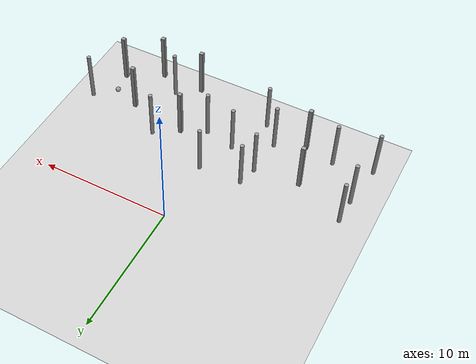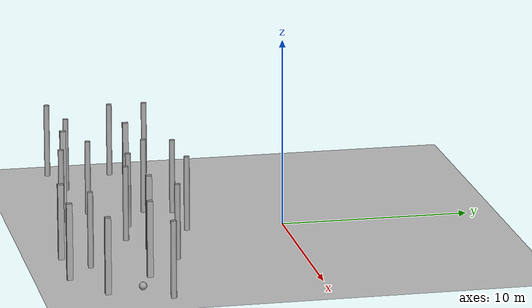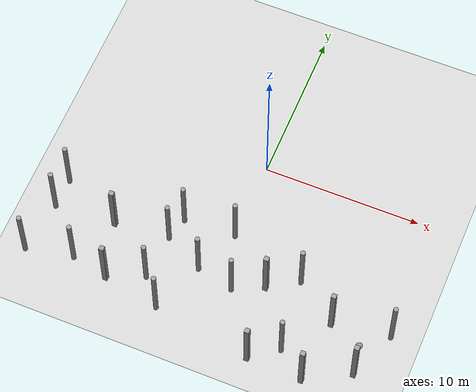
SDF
<sdf version="1.6">
 <world name="default">
  <model name="ground_plane">
   <static>1</static>
   <link name="link">
    <collision name="collision">
     <geometry><plane><normal>0 0 1</normal><size>100 100</size></plane></geometry>
    </collision>
    <visual name="visual">
     <cast_shadows>0</cast_shadows>
     <geometry><plane><normal>0 0 1</normal><size>100 100</size></plane></geometry>
     <material>
      <script><uri>file://media/materials/scripts/gazebo.material</uri><name>Gazebo/Gray</name></script>
     </material>
    </visual>
   </link>
  </model>
  <model name="unit_sphere">
   <link name="link">
    <inertial>
     <mass>1</mass>
     <inertia><ixx>0.1</ixx><ixy>0</ixy><ixz>0</ixz><iyy>0.1</iyy><iyz>0</iyz><izz>0.1</izz></inertia>
    </inertial>
    <gravity>0</gravity>
    <visual name="visual">
     <geometry><sphere><radius>0.203941</radius></sphere></geometry>
     <material>
      <script><name>Gazebo/Grey</name><uri>file://media/materials/scripts/gazebo.material</uri></script>
      <shader type="pixel"><normal_map>__default__</normal_map></shader>
     </material>
    </visual>
    <collision name="collision">
     <geometry><sphere><radius>0.203941</radius></sphere></geometry>
     <surface>
      <friction>
       <ode><mu>1</mu><mu2>1</mu2><fdir1>0 0 0</fdir1><slip1>0</slip1><slip2>0</slip2></ode>
       <torsional>
        <coefficient>1</coefficient>
        <patch_radius>0</patch_radius>
        <surface_radius>0</surface_radius>
        <use_patch_radius>1</use_patch_radius>
        <ode><slip>0</slip></ode>
       </torsional>
      </friction>
      <bounce><restitution_coefficient>0</restitution_coefficient><threshold>1e+06</threshold></bounce>
      <contact>
       <collide_without_contact>0</collide_without_contact>
       <collide_without_contact_bitmask>1</collide_without_contact_bitmask>
       <collide_bitmask>1</collide_bitmask>
       <ode>
        <soft_cfm>0</soft_cfm>
        <soft_erp>0.2</soft_erp>
        <kp>1e+13</kp>
        <kd>1</kd>
        <max_vel>0.01</max_vel>
        <min_depth>0</min_depth>
       </ode>
       <bullet>
        <split_impulse>1</split_impulse>
        <split_impulse_penetration_threshold>-0.01</split_impulse_penetration_threshold>
        <soft_cfm>0</soft_cfm>
        <soft_erp>0.2</soft_erp>
        <kp>1e+13</kp>
        <kd>1</kd>
       </bullet>
      </contact>
     </surface>
    </collision>
   </link>
   <static>0</static>
   <pose>9.54607 -9.14462 0.203941 0 -0 0</pose>
  </model>
  <model name="unit_box_clone_7">
   <link name="link">
    <inertial>
     <mass>1000</mass>
     <inertia><ixx>166.667</ixx><ixy>0</ixy><ixz>0</ixz><iyy>166.667</iyy><iyz>0</iyz><izz>166.667</izz></inertia>
    </inertial>
    <visual name="visual">
     <geometry><box><size>0.3 0.3 4</size></box></geometry>
     <material>
      <script><name>Gazebo/Grey</name><uri>file://media/materials/scripts/gazebo.material</uri></script>
      <shader type="vertex"><normal_map>__default__</normal_map></shader>
      <ambient>0.3 0.3 0.3 1</ambient>
      <diffuse>0.7 0.7 0.7 1</diffuse>
      <specular>0.01 0.01 0.01 1</specular>
      <emissive>0 0 0 1</emissive>
     </material>
    </visual>
    <collision name="collision">
     <geometry><box><size>0.3 0.3 4</size></box></geometry>
     <surface>
      <friction>
       <ode><mu>1</mu><mu2>1</mu2><fdir1>0 0 0</fdir1><slip1>0</slip1><slip2>0</slip2></ode>
       <torsional>
        <coefficient>1</coefficient>
        <patch_radius>0</patch_radius>
        <surface_radius>0</surface_radius>
        <use_patch_radius>1</use_patch_radius>
        <ode><slip>0</slip></ode>
       </torsional>
      </friction>
      <bounce><restitution_coefficient>0</restitution_coefficient><threshold>1e+06</threshold></bounce>
      <contact>
       <collide_without_contact>0</collide_without_contact>
       <collide_without_contact_bitmask>1</collide_without_contact_bitmask>
       <collide_bitmask>1</collide_bitmask>
       <ode>
        <soft_cfm>0</soft_cfm>
        <soft_erp>0.2</soft_erp>
        <kp>1e+13</kp>
        <kd>1</kd>
        <max_vel>0.01</max_vel>
        <min_depth>0</min_depth>
       </ode>
       <bullet>
        <split_impulse>1</split_impulse>
        <split_impulse_penetration_threshold>-0.01</split_impulse_penetration_threshold>
        <soft_cfm>0</soft_cfm>
        <soft_erp>0.2</soft_erp>
        <kp>1e+13</kp>
        <kd>1</kd>
       </bullet>
      </contact>
     </surface>
    </collision>
   </link>
   <static>0</static>
   <pose>9.86051 -10.9629 2 -2e-06 -2.1e-05 -0.007326</pose>
  </model>
  <model name="unit_cylinder_clone_1_clone">
   <link name="link">
    <inertial>
     <mass>1000</mass>
     <inertia><ixx>145.833</ixx><ixy>0</ixy><ixz>0</ixz><iyy>145.833</iyy><iyz>0</iyz><izz>125</izz></inertia>
    </inertial>
    <visual name="visual">
     <geometry><cylinder><radius>0.15</radius><length>4</length></cylinder></geometry>
     <material>
      <script><name>Gazebo/Grey</name><uri>file://media/materials/scripts/gazebo.material</uri></script>
      <shader type="vertex"><normal_map>__default__</normal_map></shader>
      <ambient>0.3 0.3 0.3 1</ambient>
      <diffuse>0.7 0.7 0.7 1</diffuse>
      <specular>0.01 0.01 0.01 1</specular>
      <emissive>0 0 0 1</emissive>
     </material>
    </visual>
    <collision name="collision">
     <geometry><cylinder><radius>0.15</radius><length>4</length></cylinder></geometry>
     <surface>
      <friction>
       <ode><mu>1</mu><mu2>1</mu2><fdir1>0 0 0</fdir1><slip1>0</slip1><slip2>0</slip2></ode>
       <torsional>
        <coefficient>1</coefficient>
        <patch_radius>0</patch_radius>
        <surface_radius>0</surface_radius>
        <use_patch_radius>1</use_patch_radius>
        <ode><slip>0</slip></ode>
       </torsional>
      </friction>
      <bounce><restitution_coefficient>0</restitution_coefficient><threshold>1e+06</threshold></bounce>
      <contact>
       <collide_without_contact>0</collide_without_contact>
       <collide_without_contact_bitmask>1</collide_without_contact_bitmask>
       <collide_bitmask>1</collide_bitmask>
       <ode>
        <soft_cfm>0</soft_cfm>
        <soft_erp>0.2</soft_erp>
        <kp>1e+13</kp>
        <kd>1</kd>
        <max_vel>0.01</max_vel>
        <min_depth>0</min_depth>
       </ode>
       <bullet>
        <split_impulse>1</split_impulse>
        <split_impulse_penetration_threshold>-0.01</split_impulse_penetration_threshold>
        <soft_cfm>0</soft_cfm>
        <soft_erp>0.2</soft_erp>
        <kp>1e+13</kp>
        <kd>1</kd>
       </bullet>
      </contact>
     </surface>
    </collision>
   </link>
   <static>0</static>
   <pose>-1.25665 -8.01574 1.99995 -0.000271 -2.6e-05 -0.889031</pose>
  </model>
  <model name="unit_cylinder_clone_1_clone_2">
   <link name="link">
    <inertial>
     <mass>1000</mass>
     <inertia><ixx>145.833</ixx><ixy>0</ixy><ixz>0</ixz><iyy>145.833</iyy><iyz>0</iyz><izz>125</izz></inertia>
    </inertial>
    <visual name="visual">
     <geometry><cylinder><radius>0.15</radius><length>4</length></cylinder></geometry>
     <material>
      <script><name>Gazebo/Grey</name><uri>file://media/materials/scripts/gazebo.material</uri></script>
      <shader type="vertex"><normal_map>__default__</normal_map></shader>
      <ambient>0.3 0.3 0.3 1</ambient>
      <diffuse>0.7 0.7 0.7 1</diffuse>
      <specular>0.01 0.01 0.01 1</specular>
      <emissive>0 0 0 1</emissive>
     </material>
    </visual>
    <collision name="collision">
     <geometry><cylinder><radius>0.15</radius><length>4</length></cylinder></geometry>
     <surface>
      <friction>
       <ode><mu>1</mu><mu2>1</mu2><fdir1>0 0 0</fdir1><slip1>0</slip1><slip2>0</slip2></ode>
       <torsional>
        <coefficient>1</coefficient>
        <patch_radius>0</patch_radius>
        <surface_radius>0</surface_radius>
        <use_patch_radius>1</use_patch_radius>
        <ode><slip>0</slip></ode>
       </torsional>
      </friction>
      <bounce><restitution_coefficient>0</restitution_coefficient><threshold>1e+06</threshold></bounce>
      <contact>
       <collide_without_contact>0</collide_without_contact>
       <collide_without_contact_bitmask>1</collide_without_contact_bitmask>
       <collide_bitmask>1</collide_bitmask>
       <ode>
        <soft_cfm>0</soft_cfm>
        <soft_erp>0.2</soft_erp>
        <kp>1e+13</kp>
        <kd>1</kd>
        <max_vel>0.01</max_vel>
        <min_depth>0</min_depth>
       </ode>
       <bullet>
        <split_impulse>1</split_impulse>
        <split_impulse_penetration_threshold>-0.01</split_impulse_penetration_threshold>
        <soft_cfm>0</soft_cfm>
        <soft_erp>0.2</soft_erp>
        <kp>1e+13</kp>
        <kd>1</kd>
       </bullet>
      </contact>
     </surface>
    </collision>
   </link>
   <static>0</static>
   <pose>-3.73047 -6.76346 1.99995 -0.000271 -2.6e-05 -0.89068</pose>
  </model>
  <model name="unit_cylinder_clone_1_clone_6">
   <link name="link">
    <inertial>
     <mass>1000</mass>
     <inertia><ixx>145.833</ixx><ixy>0</ixy><ixz>0</ixz><iyy>145.833</iyy><iyz>0</iyz><izz>125</izz></inertia>
    </inertial>
    <visual name="visual">
     <geometry><cylinder><radius>0.15</radius><length>4</length></cylinder></geometry>
     <material>
      <script><name>Gazebo/Grey</name><uri>file://media/materials/scripts/gazebo.material</uri></script>
      <shader type="vertex"><normal_map>__default__</normal_map></shader>
      <ambient>0.3 0.3 0.3 1</ambient>
      <diffuse>0.7 0.7 0.7 1</diffuse>
      <specular>0.01 0.01 0.01 1</specular>
      <emissive>0 0 0 1</emissive>
     </material>
    </visual>
    <collision name="collision">
     <geometry><cylinder><radius>0.15</radius><length>4</length></cylinder></geometry>
     <surface>
      <friction>
       <ode><mu>1</mu><mu2>1</mu2><fdir1>0 0 0</fdir1><slip1>0</slip1><slip2>0</slip2></ode>
       <torsional>
        <coefficient>1</coefficient>
        <patch_radius>0</patch_radius>
        <surface_radius>0</surface_radius>
        <use_patch_radius>1</use_patch_radius>
        <ode><slip>0</slip></ode>
       </torsional>
      </friction>
      <bounce><restitution_coefficient>0</restitution_coefficient><threshold>1e+06</threshold></bounce>
      <contact>
       <collide_without_contact>0</collide_without_contact>
       <collide_without_contact_bitmask>1</collide_without_contact_bitmask>
       <collide_bitmask>1</collide_bitmask>
       <ode>
        <soft_cfm>0</soft_cfm>
        <soft_erp>0.2</soft_erp>
        <kp>1e+13</kp>
        <kd>1</kd>
        <max_vel>0.01</max_vel>
        <min_depth>0</min_depth>
       </ode>
       <bullet>
        <split_impulse>1</split_impulse>
        <split_impulse_penetration_threshold>-0.01</split_impulse_penetration_threshold>
        <soft_cfm>0</soft_cfm>
        <soft_erp>0.2</soft_erp>
        <kp>1e+13</kp>
        <kd>1</kd>
       </bullet>
      </contact>
     </surface>
    </collision>
   </link>
   <static>0</static>
   <pose>-3.34469 -5.28289 1.99998 -1e-06 1e-06 -0.209365</pose>
  </model>
  <model name="unit_cylinder_clone_1_clone_9">
   <link name="link">
    <inertial>
     <mass>1000</mass>
     <inertia><ixx>145.833</ixx><ixy>0</ixy><ixz>0</ixz><iyy>145.833</iyy><iyz>0</iyz><izz>125</izz></inertia>
    </inertial>
    <visual name="visual">
     <geometry><cylinder><radius>0.15</radius><length>4</length></cylinder></geometry>
     <material>
      <script><name>Gazebo/Grey</name><uri>file://media/materials/scripts/gazebo.material</uri></script>
      <shader type="vertex"><normal_map>__default__</normal_map></shader>
      <ambient>0.3 0.3 0.3 1</ambient>
      <diffuse>0.7 0.7 0.7 1</diffuse>
      <specular>0.01 0.01 0.01 1</specular>
      <emissive>0 0 0 1</emissive>
     </material>
    </visual>
    <collision name="collision">
     <geometry><cylinder><radius>0.15</radius><length>4</length></cylinder></geometry>
     <surface>
      <friction>
       <ode><mu>1</mu><mu2>1</mu2><fdir1>0 0 0</fdir1><slip1>0</slip1><slip2>0</slip2></ode>
       <torsional>
        <coefficient>1</coefficient>
        <patch_radius>0</patch_radius>
        <surface_radius>0</surface_radius>
        <use_patch_radius>1</use_patch_radius>
        <ode><slip>0</slip></ode>
       </torsional>
      </friction>
      <bounce><restitution_coefficient>0</restitution_coefficient><threshold>1e+06</threshold></bounce>
      <contact>
       <collide_without_contact>0</collide_without_contact>
       <collide_without_contact_bitmask>1</collide_without_contact_bitmask>
       <collide_bitmask>1</collide_bitmask>
       <ode>
        <soft_cfm>0</soft_cfm>
        <soft_erp>0.2</soft_erp>
        <kp>1e+13</kp>
        <kd>1</kd>
        <max_vel>0.01</max_vel>
        <min_depth>0</min_depth>
       </ode>
       <bullet>
        <split_impulse>1</split_impulse>
        <split_impulse_penetration_threshold>-0.01</split_impulse_penetration_threshold>
        <soft_cfm>0</soft_cfm>
        <soft_erp>0.2</soft_erp>
        <kp>1e+13</kp>
        <kd>1</kd>
       </bullet>
      </contact>
     </surface>
    </collision>
   </link>
   <static>0</static>
   <pose>11.0861 -7.86396 1.99995 -0.000271 -2.7e-05 -0.891231</pose>
  </model>
  <model name="unit_cylinder_clone_1_clone_10">
   <link name="link">
    <inertial>
     <mass>1000</mass>
     <inertia><ixx>145.833</ixx><ixy>0</ixy><ixz>0</ixz><iyy>145.833</iyy><iyz>0</iyz><izz>125</izz></inertia>
    </inertial>
    <visual name="visual">
     <geometry><cylinder><radius>0.15</radius><length>4</length></cylinder></geometry>
     <material>
      <script><name>Gazebo/Grey</name><uri>file://media/materials/scripts/gazebo.material</uri></script>
      <shader type="vertex"><normal_map>__default__</normal_map></shader>
      <ambient>0.3 0.3 0.3 1</ambient>
      <diffuse>0.7 0.7 0.7 1</diffuse>
      <specular>0.01 0.01 0.01 1</specular>
      <emissive>0 0 0 1</emissive>
     </material>
    </visual>
    <collision name="collision">
     <geometry><cylinder><radius>0.15</radius><length>4</length></cylinder></geometry>
     <surface>
      <friction>
       <ode><mu>1</mu><mu2>1</mu2><fdir1>0 0 0</fdir1><slip1>0</slip1><slip2>0</slip2></ode>
       <torsional>
        <coefficient>1</coefficient>
        <patch_radius>0</patch_radius>
        <surface_radius>0</surface_radius>
        <use_patch_radius>1</use_patch_radius>
        <ode><slip>0</slip></ode>
       </torsional>
      </friction>
      <bounce><restitution_coefficient>0</restitution_coefficient><threshold>1e+06</threshold></bounce>
      <contact>
       <collide_without_contact>0</collide_without_contact>
       <collide_without_contact_bitmask>1</collide_without_contact_bitmask>
       <collide_bitmask>1</collide_bitmask>
       <ode>
        <soft_cfm>0</soft_cfm>
        <soft_erp>0.2</soft_erp>
        <kp>1e+13</kp>
        <kd>1</kd>
        <max_vel>0.01</max_vel>
        <min_depth>0</min_depth>
       </ode>
       <bullet>
        <split_impulse>1</split_impulse>
        <split_impulse_penetration_threshold>-0.01</split_impulse_penetration_threshold>
        <soft_cfm>0</soft_cfm>
        <soft_erp>0.2</soft_erp>
        <kp>1e+13</kp>
        <kd>1</kd>
       </bullet>
      </contact>
     </surface>
    </collision>
   </link>
   <static>0</static>
   <pose>-0.051758 -5.11049 1.99998 -1e-06 1e-06 -0.191849</pose>
  </model>
  <model name="unit_cylinder_clone_1_clone_15">
   <link name="link">
    <inertial>
     <mass>1000</mass>
     <inertia><ixx>145.833</ixx><ixy>0</ixy><ixz>0</ixz><iyy>145.833</iyy><iyz>0</iyz><izz>125</izz></inertia>
    </inertial>
    <visual name="visual">
     <geometry><cylinder><radius>0.15</radius><length>4</length></cylinder></geometry>
     <material>
      <script><name>Gazebo/Grey</name><uri>file://media/materials/scripts/gazebo.material</uri></script>
      <shader type="vertex"><normal_map>__default__</normal_map></shader>
      <ambient>0.3 0.3 0.3 1</ambient>
      <diffuse>0.7 0.7 0.7 1</diffuse>
      <specular>0.01 0.01 0.01 1</specular>
      <emissive>0 0 0 1</emissive>
     </material>
    </visual>
    <collision name="collision">
     <geometry><cylinder><radius>0.15</radius><length>4</length></cylinder></geometry>
     <surface>
      <friction>
       <ode><mu>1</mu><mu2>1</mu2><fdir1>0 0 0</fdir1><slip1>0</slip1><slip2>0</slip2></ode>
       <torsional>
        <coefficient>1</coefficient>
        <patch_radius>0</patch_radius>
        <surface_radius>0</surface_radius>
        <use_patch_radius>1</use_patch_radius>
        <ode><slip>0</slip></ode>
       </torsional>
      </friction>
      <bounce><restitution_coefficient>0</restitution_coefficient><threshold>1e+06</threshold></bounce>
      <contact>
       <collide_without_contact>0</collide_without_contact>
       <collide_without_contact_bitmask>1</collide_without_contact_bitmask>
       <collide_bitmask>1</collide_bitmask>
       <ode>
        <soft_cfm>0</soft_cfm>
        <soft_erp>0.2</soft_erp>
        <kp>1e+13</kp>
        <kd>1</kd>
        <max_vel>0.01</max_vel>
        <min_depth>0</min_depth>
       </ode>
       <bullet>
        <split_impulse>1</split_impulse>
        <split_impulse_penetration_threshold>-0.01</split_impulse_penetration_threshold>
        <soft_cfm>0</soft_cfm>
        <soft_erp>0.2</soft_erp>
        <kp>1e+13</kp>
        <kd>1</kd>
       </bullet>
      </contact>
     </surface>
    </collision>
   </link>
   <static>0</static>
   <pose>-11.0966 -7.37215 1.99995 -0.000271 -2.7e-05 -0.892503</pose>
  </model>
  <model name="unit_cylinder_clone_1_clone_18">
   <link name="link">
    <inertial>
     <mass>1000</mass>
     <inertia><ixx>145.833</ixx><ixy>0</ixy><ixz>0</ixz><iyy>145.833</iyy><iyz>0</iyz><izz>125</izz></inertia>
    </inertial>
    <visual name="visual">
     <geometry><cylinder><radius>0.15</radius><length>4</length></cylinder></geometry>
     <material>
      <script><name>Gazebo/Grey</name><uri>file://media/materials/scripts/gazebo.material</uri></script>
      <shader type="vertex"><normal_map>__default__</normal_map></shader>
      <ambient>0.3 0.3 0.3 1</ambient>
      <diffuse>0.7 0.7 0.7 1</diffuse>
      <specular>0.01 0.01 0.01 1</specular>
      <emissive>0 0 0 1</emissive>
     </material>
    </visual>
    <collision name="collision">
     <geometry><cylinder><radius>0.15</radius><length>4</length></cylinder></geometry>
     <surface>
      <friction>
       <ode><mu>1</mu><mu2>1</mu2><fdir1>0 0 0</fdir1><slip1>0</slip1><slip2>0</slip2></ode>
       <torsional>
        <coefficient>1</coefficient>
        <patch_radius>0</patch_radius>
        <surface_radius>0</surface_radius>
        <use_patch_radius>1</use_patch_radius>
        <ode><slip>0</slip></ode>
       </torsional>
      </friction>
      <bounce><restitution_coefficient>0</restitution_coefficient><threshold>1e+06</threshold></bounce>
      <contact>
       <collide_without_contact>0</collide_without_contact>
       <collide_without_contact_bitmask>1</collide_without_contact_bitmask>
       <collide_bitmask>1</collide_bitmask>
       <ode>
        <soft_cfm>0</soft_cfm>
        <soft_erp>0.2</soft_erp>
        <kp>1e+13</kp>
        <kd>1</kd>
        <max_vel>0.01</max_vel>
        <min_depth>0</min_depth>
       </ode>
       <bullet>
        <split_impulse>1</split_impulse>
        <split_impulse_penetration_threshold>-0.01</split_impulse_penetration_threshold>
        <soft_cfm>0</soft_cfm>
        <soft_erp>0.2</soft_erp>
        <kp>1e+13</kp>
        <kd>1</kd>
       </bullet>
      </contact>
     </surface>
    </collision>
   </link>
   <static>0</static>
   <pose>-11.5678 -10.755 1.99995 -0.000271 -2.8e-05 -0.896189</pose>
  </model>
  <model name="unit_cylinder_clone_1_clone_19">
   <link name="link">
    <inertial>
     <mass>1000</mass>
     <inertia><ixx>145.833</ixx><ixy>0</ixy><ixz>0</ixz><iyy>145.833</iyy><iyz>0</iyz><izz>125</izz></inertia>
    </inertial>
    <visual name="visual">
     <geometry><cylinder><radius>0.15</radius><length>4</length></cylinder></geometry>
     <material>
      <script><name>Gazebo/Grey</name><uri>file://media/materials/scripts/gazebo.material</uri></script>
      <shader type="vertex"><normal_map>__default__</normal_map></shader>
      <ambient>0.3 0.3 0.3 1</ambient>
      <diffuse>0.7 0.7 0.7 1</diffuse>
      <specular>0.01 0.01 0.01 1</specular>
      <emissive>0 0 0 1</emissive>
     </material>
    </visual>
    <collision name="collision">
     <geometry><cylinder><radius>0.15</radius><length>4</length></cylinder></geometry>
     <surface>
      <friction>
       <ode><mu>1</mu><mu2>1</mu2><fdir1>0 0 0</fdir1><slip1>0</slip1><slip2>0</slip2></ode>
       <torsional>
        <coefficient>1</coefficient>
        <patch_radius>0</patch_radius>
        <surface_radius>0</surface_radius>
        <use_patch_radius>1</use_patch_radius>
        <ode><slip>0</slip></ode>
       </torsional>
      </friction>
      <bounce><restitution_coefficient>0</restitution_coefficient><threshold>1e+06</threshold></bounce>
      <contact>
       <collide_without_contact>0</collide_without_contact>
       <collide_without_contact_bitmask>1</collide_without_contact_bitmask>
       <collide_bitmask>1</collide_bitmask>
       <ode>
        <soft_cfm>0</soft_cfm>
        <soft_erp>0.2</soft_erp>
        <kp>1e+13</kp>
        <kd>1</kd>
        <max_vel>0.01</max_vel>
        <min_depth>0</min_depth>
       </ode>
       <bullet>
        <split_impulse>1</split_impulse>
        <split_impulse_penetration_threshold>-0.01</split_impulse_penetration_threshold>
        <soft_cfm>0</soft_cfm>
        <soft_erp>0.2</soft_erp>
        <kp>1e+13</kp>
        <kd>1</kd>
       </bullet>
      </contact>
     </surface>
    </collision>
   </link>
   <static>0</static>
   <pose>1.10707 -8.55223 1.99995 -0.000271 -2.7e-05 -0.893229</pose>
  </model>
  <model name="unit_cylinder_clone_1_clone_25">
   <link name="link">
    <inertial>
     <mass>1000</mass>
     <inertia><ixx>145.833</ixx><ixy>0</ixy><ixz>0</ixz><iyy>145.833</iyy><iyz>0</iyz><izz>125</izz></inertia>
    </inertial>
    <visual name="visual">
     <geometry><cylinder><radius>0.15</radius><length>4</length></cylinder></geometry>
     <material>
      <script><name>Gazebo/Grey</name><uri>file://media/materials/scripts/gazebo.material</uri></script>
      <shader type="vertex"><normal_map>__default__</normal_map></shader>
      <ambient>0.3 0.3 0.3 1</ambient>
      <diffuse>0.7 0.7 0.7 1</diffuse>
      <specular>0.01 0.01 0.01 1</specular>
      <emissive>0 0 0 1</emissive>
     </material>
    </visual>
    <collision name="collision">
     <geometry><cylinder><radius>0.15</radius><length>4</length></cylinder></geometry>
     <surface>
      <friction>
       <ode><mu>1</mu><mu2>1</mu2><fdir1>0 0 0</fdir1><slip1>0</slip1><slip2>0</slip2></ode>
       <torsional>
        <coefficient>1</coefficient>
        <patch_radius>0</patch_radius>
        <surface_radius>0</surface_radius>
        <use_patch_radius>1</use_patch_radius>
        <ode><slip>0</slip></ode>
       </torsional>
      </friction>
      <bounce><restitution_coefficient>0</restitution_coefficient><threshold>1e+06</threshold></bounce>
      <contact>
       <collide_without_contact>0</collide_without_contact>
       <collide_without_contact_bitmask>1</collide_without_contact_bitmask>
       <collide_bitmask>1</collide_bitmask>
       <ode>
        <soft_cfm>0</soft_cfm>
        <soft_erp>0.2</soft_erp>
        <kp>1e+13</kp>
        <kd>1</kd>
        <max_vel>0.01</max_vel>
        <min_depth>0</min_depth>
       </ode>
       <bullet>
        <split_impulse>1</split_impulse>
        <split_impulse_penetration_threshold>-0.01</split_impulse_penetration_threshold>
        <soft_cfm>0</soft_cfm>
        <soft_erp>0.2</soft_erp>
        <kp>1e+13</kp>
        <kd>1</kd>
       </bullet>
      </contact>
     </surface>
    </collision>
   </link>
   <static>0</static>
   <pose>-11.0462 -5.44264 1.99995 -0.000271 -2.8e-05 -0.897285</pose>
  </model>
  <model name="unit_cylinder_clone_1_clone_26">
   <link name="link">
    <inertial>
     <mass>1000</mass>
     <inertia><ixx>145.833</ixx><ixy>0</ixy><ixz>0</ixz><iyy>145.833</iyy><iyz>0</iyz><izz>125</izz></inertia>
    </inertial>
    <visual name="visual">
     <geometry><cylinder><radius>0.15</radius><length>4</length></cylinder></geometry>
     <material>
      <script><name>Gazebo/Grey</name><uri>file://media/materials/scripts/gazebo.material</uri></script>
      <shader type="vertex"><normal_map>__default__</normal_map></shader>
      <ambient>0.3 0.3 0.3 1</ambient>
      <diffuse>0.7 0.7 0.7 1</diffuse>
      <specular>0.01 0.01 0.01 1</specular>
      <emissive>0 0 0 1</emissive>
     </material>
    </visual>
    <collision name="collision">
     <geometry><cylinder><radius>0.15</radius><length>4</length></cylinder></geometry>
     <surface>
      <friction>
       <ode><mu>1</mu><mu2>1</mu2><fdir1>0 0 0</fdir1><slip1>0</slip1><slip2>0</slip2></ode>
       <torsional>
        <coefficient>1</coefficient>
        <patch_radius>0</patch_radius>
        <surface_radius>0</surface_radius>
        <use_patch_radius>1</use_patch_radius>
        <ode><slip>0</slip></ode>
       </torsional>
      </friction>
      <bounce><restitution_coefficient>0</restitution_coefficient><threshold>1e+06</threshold></bounce>
      <contact>
       <collide_without_contact>0</collide_without_contact>
       <collide_without_contact_bitmask>1</collide_without_contact_bitmask>
       <collide_bitmask>1</collide_bitmask>
       <ode>
        <soft_cfm>0</soft_cfm>
        <soft_erp>0.2</soft_erp>
        <kp>1e+13</kp>
        <kd>1</kd>
        <max_vel>0.01</max_vel>
        <min_depth>0</min_depth>
       </ode>
       <bullet>
        <split_impulse>1</split_impulse>
        <split_impulse_penetration_threshold>-0.01</split_impulse_penetration_threshold>
        <soft_cfm>0</soft_cfm>
        <soft_erp>0.2</soft_erp>
        <kp>1e+13</kp>
        <kd>1</kd>
       </bullet>
      </contact>
     </surface>
    </collision>
   </link>
   <static>0</static>
   <pose>-3.96523 -9.72244 1.99995 -0.000271 -2.8e-05 -0.896437</pose>
  </model>
  <model name="unit_cylinder_clone_1_clone_28">
   <link name="link">
    <inertial>
     <mass>1000</mass>
     <inertia><ixx>145.833</ixx><ixy>0</ixy><ixz>0</ixz><iyy>145.833</iyy><iyz>0</iyz><izz>125</izz></inertia>
    </inertial>
    <visual name="visual">
     <geometry><cylinder><radius>0.15</radius><length>4</length></cylinder></geometry>
     <material>
      <script><name>Gazebo/Grey</name><uri>file://media/materials/scripts/gazebo.material</uri></script>
      <shader type="vertex"><normal_map>__default__</normal_map></shader>
      <ambient>0.3 0.3 0.3 1</ambient>
      <diffuse>0.7 0.7 0.7 1</diffuse>
      <specular>0.01 0.01 0.01 1</specular>
      <emissive>0 0 0 1</emissive>
     </material>
    </visual>
    <collision name="collision">
     <geometry><cylinder><radius>0.15</radius><length>4</length></cylinder></geometry>
     <surface>
      <friction>
       <ode><mu>1</mu><mu2>1</mu2><fdir1>0 0 0</fdir1><slip1>0</slip1><slip2>0</slip2></ode>
       <torsional>
        <coefficient>1</coefficient>
        <patch_radius>0</patch_radius>
        <surface_radius>0</surface_radius>
        <use_patch_radius>1</use_patch_radius>
        <ode><slip>0</slip></ode>
       </torsional>
      </friction>
      <bounce><restitution_coefficient>0</restitution_coefficient><threshold>1e+06</threshold></bounce>
      <contact>
       <collide_without_contact>0</collide_without_contact>
       <collide_without_contact_bitmask>1</collide_without_contact_bitmask>
       <collide_bitmask>1</collide_bitmask>
       <ode>
        <soft_cfm>0</soft_cfm>
        <soft_erp>0.2</soft_erp>
        <kp>1e+13</kp>
        <kd>1</kd>
        <max_vel>0.01</max_vel>
        <min_depth>0</min_depth>
       </ode>
       <bullet>
        <split_impulse>1</split_impulse>
        <split_impulse_penetration_threshold>-0.01</split_impulse_penetration_threshold>
        <soft_cfm>0</soft_cfm>
        <soft_erp>0.2</soft_erp>
        <kp>1e+13</kp>
        <kd>1</kd>
       </bullet>
      </contact>
     </surface>
    </collision>
   </link>
   <static>0</static>
   <pose>-2.60881 -11.3569 1.99995 -0.000271 -2.8e-05 -0.897294</pose>
  </model>
  <model name="unit_cylinder_clone_1_clone_30">
   <link name="link">
    <inertial>
     <mass>1000</mass>
     <inertia><ixx>145.833</ixx><ixy>0</ixy><ixz>0</ixz><iyy>145.833</iyy><iyz>0</iyz><izz>125</izz></inertia>
    </inertial>
    <visual name="visual">
     <geometry><cylinder><radius>0.15</radius><length>4</length></cylinder></geometry>
     <material>
      <script><name>Gazebo/Grey</name><uri>file://media/materials/scripts/gazebo.material</uri></script>
      <shader type="vertex"><normal_map>__default__</normal_map></shader>
      <ambient>0.3 0.3 0.3 1</ambient>
      <diffuse>0.7 0.7 0.7 1</diffuse>
      <specular>0.01 0.01 0.01 1</specular>
      <emissive>0 0 0 1</emissive>
     </material>
    </visual>
    <collision name="collision">
     <geometry><cylinder><radius>0.15</radius><length>4</length></cylinder></geometry>
     <surface>
      <friction>
       <ode><mu>1</mu><mu2>1</mu2><fdir1>0 0 0</fdir1><slip1>0</slip1><slip2>0</slip2></ode>
       <torsional>
        <coefficient>1</coefficient>
        <patch_radius>0</patch_radius>
        <surface_radius>0</surface_radius>
        <use_patch_radius>1</use_patch_radius>
        <ode><slip>0</slip></ode>
       </torsional>
      </friction>
      <bounce><restitution_coefficient>0</restitution_coefficient><threshold>1e+06</threshold></bounce>
      <contact>
       <collide_without_contact>0</collide_without_contact>
       <collide_without_contact_bitmask>1</collide_without_contact_bitmask>
       <collide_bitmask>1</collide_bitmask>
       <ode>
        <soft_cfm>0</soft_cfm>
        <soft_erp>0.2</soft_erp>
        <kp>1e+13</kp>
        <kd>1</kd>
        <max_vel>0.01</max_vel>
        <min_depth>0</min_depth>
       </ode>
       <bullet>
        <split_impulse>1</split_impulse>
        <split_impulse_penetration_threshold>-0.01</split_impulse_penetration_threshold>
        <soft_cfm>0</soft_cfm>
        <soft_erp>0.2</soft_erp>
        <kp>1e+13</kp>
        <kd>1</kd>
       </bullet>
      </contact>
     </surface>
    </collision>
   </link>
   <static>0</static>
   <pose>-8.57241 -10.1768 1.99995 -0.000271 -2.8e-05 -0.89728</pose>
  </model>
  <model name="unit_cylinder_clone_clone">
   <link name="link">
    <inertial>
     <mass>1000</mass>
     <inertia><ixx>145.833</ixx><ixy>0</ixy><ixz>0</ixz><iyy>145.833</iyy><iyz>0</iyz><izz>125</izz></inertia>
    </inertial>
    <visual name="visual">
     <geometry><cylinder><radius>0.15</radius><length>4</length></cylinder></geometry>
     <material>
      <script><name>Gazebo/Grey</name><uri>file://media/materials/scripts/gazebo.material</uri></script>
      <shader type="vertex"><normal_map>__default__</normal_map></shader>
      <ambient>0.3 0.3 0.3 1</ambient>
      <diffuse>0.7 0.7 0.7 1</diffuse>
      <specular>0.01 0.01 0.01 1</specular>
      <emissive>0 0 0 1</emissive>
     </material>
    </visual>
    <collision name="collision">
     <geometry><cylinder><radius>0.15</radius><length>4</length></cylinder></geometry>
     <surface>
      <friction>
       <ode><mu>1</mu><mu2>1</mu2><fdir1>0 0 0</fdir1><slip1>0</slip1><slip2>0</slip2></ode>
       <torsional>
        <coefficient>1</coefficient>
        <patch_radius>0</patch_radius>
        <surface_radius>0</surface_radius>
        <use_patch_radius>1</use_patch_radius>
        <ode><slip>0</slip></ode>
       </torsional>
      </friction>
      <bounce><restitution_coefficient>0</restitution_coefficient><threshold>1e+06</threshold></bounce>
      <contact>
       <collide_without_contact>0</collide_without_contact>
       <collide_without_contact_bitmask>1</collide_without_contact_bitmask>
       <collide_bitmask>1</collide_bitmask>
       <ode>
        <soft_cfm>0</soft_cfm>
        <soft_erp>0.2</soft_erp>
        <kp>1e+13</kp>
        <kd>1</kd>
        <max_vel>0.01</max_vel>
        <min_depth>0</min_depth>
       </ode>
       <bullet>
        <split_impulse>1</split_impulse>
        <split_impulse_penetration_threshold>-0.01</split_impulse_penetration_threshold>
        <soft_cfm>0</soft_cfm>
        <soft_erp>0.2</soft_erp>
        <kp>1e+13</kp>
        <kd>1</kd>
       </bullet>
      </contact>
     </surface>
    </collision>
   </link>
   <static>0</static>
   <pose>5.35106 -11.1041 1.99998 -1e-06 1e-06 -0.18625</pose>
  </model>
  <model name="unit_cylinder_clone_clone_1">
   <link name="link">
    <inertial>
     <mass>1000</mass>
     <inertia><ixx>145.833</ixx><ixy>0</ixy><ixz>0</ixz><iyy>145.833</iyy><iyz>0</iyz><izz>125</izz></inertia>
    </inertial>
    <visual name="visual">
     <geometry><cylinder><radius>0.15</radius><length>4</length></cylinder></geometry>
     <material>
      <script><name>Gazebo/Grey</name><uri>file://media/materials/scripts/gazebo.material</uri></script>
      <shader type="vertex"><normal_map>__default__</normal_map></shader>
      <ambient>0.3 0.3 0.3 1</ambient>
      <diffuse>0.7 0.7 0.7 1</diffuse>
      <specular>0.01 0.01 0.01 1</specular>
      <emissive>0 0 0 1</emissive>
     </material>
    </visual>
    <collision name="collision">
     <geometry><cylinder><radius>0.15</radius><length>4</length></cylinder></geometry>
     <surface>
      <friction>
       <ode><mu>1</mu><mu2>1</mu2><fdir1>0 0 0</fdir1><slip1>0</slip1><slip2>0</slip2></ode>
       <torsional>
        <coefficient>1</coefficient>
        <patch_radius>0</patch_radius>
        <surface_radius>0</surface_radius>
        <use_patch_radius>1</use_patch_radius>
        <ode><slip>0</slip></ode>
       </torsional>
      </friction>
      <bounce><restitution_coefficient>0</restitution_coefficient><threshold>1e+06</threshold></bounce>
      <contact>
       <collide_without_contact>0</collide_without_contact>
       <collide_without_contact_bitmask>1</collide_without_contact_bitmask>
       <collide_bitmask>1</collide_bitmask>
       <ode>
        <soft_cfm>0</soft_cfm>
        <soft_erp>0.2</soft_erp>
        <kp>1e+13</kp>
        <kd>1</kd>
        <max_vel>0.01</max_vel>
        <min_depth>0</min_depth>
       </ode>
       <bullet>
        <split_impulse>1</split_impulse>
        <split_impulse_penetration_threshold>-0.01</split_impulse_penetration_threshold>
        <soft_cfm>0</soft_cfm>
        <soft_erp>0.2</soft_erp>
        <kp>1e+13</kp>
        <kd>1</kd>
       </bullet>
      </contact>
     </surface>
    </collision>
   </link>
   <static>0</static>
   <pose>4.81988 -6.50768 1.99998 -2e-06 1e-06 -0.192788</pose>
  </model>
  <model name="unit_box_clone_26_clone_0">
   <link name="link">
    <inertial>
     <mass>1000</mass>
     <inertia><ixx>166.667</ixx><ixy>0</ixy><ixz>0</ixz><iyy>166.667</iyy><iyz>0</iyz><izz>166.667</izz></inertia>
    </inertial>
    <visual name="visual">
     <geometry><box><size>0.3 0.3 4</size></box></geometry>
     <material>
      <script><name>Gazebo/Grey</name><uri>file://media/materials/scripts/gazebo.material</uri></script>
      <shader type="vertex"><normal_map>__default__</normal_map></shader>
      <ambient>0.3 0.3 0.3 1</ambient>
      <diffuse>0.7 0.7 0.7 1</diffuse>
      <specular>0.01 0.01 0.01 1</specular>
      <emissive>0 0 0 1</emissive>
     </material>
    </visual>
    <collision name="collision">
     <geometry><box><size>0.3 0.3 4</size></box></geometry>
     <surface>
      <friction>
       <ode><mu>1</mu><mu2>1</mu2><fdir1>0 0 0</fdir1><slip1>0</slip1><slip2>0</slip2></ode>
       <torsional>
        <coefficient>1</coefficient>
        <patch_radius>0</patch_radius>
        <surface_radius>0</surface_radius>
        <use_patch_radius>1</use_patch_radius>
        <ode><slip>0</slip></ode>
       </torsional>
      </friction>
      <bounce><restitution_coefficient>0</restitution_coefficient><threshold>1e+06</threshold></bounce>
      <contact>
       <collide_without_contact>0</collide_without_contact>
       <collide_without_contact_bitmask>1</collide_without_contact_bitmask>
       <collide_bitmask>1</collide_bitmask>
       <ode>
        <soft_cfm>0</soft_cfm>
        <soft_erp>0.2</soft_erp>
        <kp>1e+13</kp>
        <kd>1</kd>
        <max_vel>0.01</max_vel>
        <min_depth>0</min_depth>
       </ode>
       <bullet>
        <split_impulse>1</split_impulse>
        <split_impulse_penetration_threshold>-0.01</split_impulse_penetration_threshold>
        <soft_cfm>0</soft_cfm>
        <soft_erp>0.2</soft_erp>
        <kp>1e+13</kp>
        <kd>1</kd>
       </bullet>
      </contact>
     </surface>
    </collision>
   </link>
   <static>0</static>
   <pose>2.98326 -7.66711 2.00001 -2e-06 -4e-05 -0.002603</pose>
  </model>
  <model name="unit_box_clone_26_clone_7">
   <link name="link">
    <inertial>
     <mass>1000</mass>
     <inertia><ixx>166.667</ixx><ixy>0</ixy><ixz>0</ixz><iyy>166.667</iyy><iyz>0</iyz><izz>166.667</izz></inertia>
    </inertial>
    <visual name="visual">
     <geometry><box><size>0.3 0.3 4</size></box></geometry>
     <material>
      <script><name>Gazebo/Grey</name><uri>file://media/materials/scripts/gazebo.material</uri></script>
      <shader type="vertex"><normal_map>__default__</normal_map></shader>
      <ambient>0.3 0.3 0.3 1</ambient>
      <diffuse>0.7 0.7 0.7 1</diffuse>
      <specular>0.01 0.01 0.01 1</specular>
      <emissive>0 0 0 1</emissive>
     </material>
    </visual>
    <collision name="collision">
     <geometry><box><size>0.3 0.3 4</size></box></geometry>
     <surface>
      <friction>
       <ode><mu>1</mu><mu2>1</mu2><fdir1>0 0 0</fdir1><slip1>0</slip1><slip2>0</slip2></ode>
       <torsional>
        <coefficient>1</coefficient>
        <patch_radius>0</patch_radius>
        <surface_radius>0</surface_radius>
        <use_patch_radius>1</use_patch_radius>
        <ode><slip>0</slip></ode>
       </torsional>
      </friction>
      <bounce><restitution_coefficient>0</restitution_coefficient><threshold>1e+06</threshold></bounce>
      <contact>
       <collide_without_contact>0</collide_without_contact>
       <collide_without_contact_bitmask>1</collide_without_contact_bitmask>
       <collide_bitmask>1</collide_bitmask>
       <ode>
        <soft_cfm>0</soft_cfm>
        <soft_erp>0.2</soft_erp>
        <kp>1e+13</kp>
        <kd>1</kd>
        <max_vel>0.01</max_vel>
        <min_depth>0</min_depth>
       </ode>
       <bullet>
        <split_impulse>1</split_impulse>
        <split_impulse_penetration_threshold>-0.01</split_impulse_penetration_threshold>
        <soft_cfm>0</soft_cfm>
        <soft_erp>0.2</soft_erp>
        <kp>1e+13</kp>
        <kd>1</kd>
       </bullet>
      </contact>
     </surface>
    </collision>
   </link>
   <static>0</static>
   <pose>7.49438 -8.42371 2 3e-06 -8e-06 0.003137</pose>
  </model>
  <model name="unit_box_clone_26_clone_11">
   <link name="link">
    <inertial>
     <mass>1000</mass>
     <inertia><ixx>166.667</ixx><ixy>0</ixy><ixz>0</ixz><iyy>166.667</iyy><iyz>0</iyz><izz>166.667</izz></inertia>
    </inertial>
    <visual name="visual">
     <geometry><box><size>0.3 0.3 4</size></box></geometry>
     <material>
      <script><name>Gazebo/Grey</name><uri>file://media/materials/scripts/gazebo.material</uri></script>
      <shader type="vertex"><normal_map>__default__</normal_map></shader>
      <ambient>0.3 0.3 0.3 1</ambient>
      <diffuse>0.7 0.7 0.7 1</diffuse>
      <specular>0.01 0.01 0.01 1</specular>
      <emissive>0 0 0 1</emissive>
     </material>
    </visual>
    <collision name="collision">
     <geometry><box><size>0.3 0.3 4</size></box></geometry>
     <surface>
      <friction>
       <ode><mu>1</mu><mu2>1</mu2><fdir1>0 0 0</fdir1><slip1>0</slip1><slip2>0</slip2></ode>
       <torsional>
        <coefficient>1</coefficient>
        <patch_radius>0</patch_radius>
        <surface_radius>0</surface_radius>
        <use_patch_radius>1</use_patch_radius>
        <ode><slip>0</slip></ode>
       </torsional>
      </friction>
      <bounce><restitution_coefficient>0</restitution_coefficient><threshold>1e+06</threshold></bounce>
      <contact>
       <collide_without_contact>0</collide_without_contact>
       <collide_without_contact_bitmask>1</collide_without_contact_bitmask>
       <collide_bitmask>1</collide_bitmask>
       <ode>
        <soft_cfm>0</soft_cfm>
        <soft_erp>0.2</soft_erp>
        <kp>1e+13</kp>
        <kd>1</kd>
        <max_vel>0.01</max_vel>
        <min_depth>0</min_depth>
       </ode>
       <bullet>
        <split_impulse>1</split_impulse>
        <split_impulse_penetration_threshold>-0.01</split_impulse_penetration_threshold>
        <soft_cfm>0</soft_cfm>
        <soft_erp>0.2</soft_erp>
        <kp>1e+13</kp>
        <kd>1</kd>
       </bullet>
      </contact>
     </surface>
    </collision>
   </link>
   <static>0</static>
   <pose>3.67515 -12.3631 2 1e-06 1e-05 -0.003827</pose>
  </model>
  <model name="unit_box_clone_26_clone_12">
   <link name="link">
    <inertial>
     <mass>1000</mass>
     <inertia><ixx>166.667</ixx><ixy>0</ixy><ixz>0</ixz><iyy>166.667</iyy><iyz>0</iyz><izz>166.667</izz></inertia>
    </inertial>
    <visual name="visual">
     <geometry><box><size>0.3 0.3 4</size></box></geometry>
     <material>
      <script><name>Gazebo/Grey</name><uri>file://media/materials/scripts/gazebo.material</uri></script>
      <shader type="vertex"><normal_map>__default__</normal_map></shader>
      <ambient>0.3 0.3 0.3 1</ambient>
      <diffuse>0.7 0.7 0.7 1</diffuse>
      <specular>0.01 0.01 0.01 1</specular>
      <emissive>0 0 0 1</emissive>
     </material>
    </visual>
    <collision name="collision">
     <geometry><box><size>0.3 0.3 4</size></box></geometry>
     <surface>
      <friction>
       <ode><mu>1</mu><mu2>1</mu2><fdir1>0 0 0</fdir1><slip1>0</slip1><slip2>0</slip2></ode>
       <torsional>
        <coefficient>1</coefficient>
        <patch_radius>0</patch_radius>
        <surface_radius>0</surface_radius>
        <use_patch_radius>1</use_patch_radius>
        <ode><slip>0</slip></ode>
       </torsional>
      </friction>
      <bounce><restitution_coefficient>0</restitution_coefficient><threshold>1e+06</threshold></bounce>
      <contact>
       <collide_without_contact>0</collide_without_contact>
       <collide_without_contact_bitmask>1</collide_without_contact_bitmask>
       <collide_bitmask>1</collide_bitmask>
       <ode>
        <soft_cfm>0</soft_cfm>
        <soft_erp>0.2</soft_erp>
        <kp>1e+13</kp>
        <kd>1</kd>
        <max_vel>0.01</max_vel>
        <min_depth>0</min_depth>
       </ode>
       <bullet>
        <split_impulse>1</split_impulse>
        <split_impulse_penetration_threshold>-0.01</split_impulse_penetration_threshold>
        <soft_cfm>0</soft_cfm>
        <soft_erp>0.2</soft_erp>
        <kp>1e+13</kp>
        <kd>1</kd>
       </bullet>
      </contact>
     </surface>
    </collision>
   </link>
   <static>0</static>
   <pose>7.14193 -12.4657 2 -1e-06 -1e-06 0.001892</pose>
  </model>
  <model name="unit_box_clone_22_clone_7">
   <link name="link">
    <inertial>
     <mass>1000</mass>
     <inertia><ixx>166.667</ixx><ixy>0</ixy><ixz>0</ixz><iyy>166.667</iyy><iyz>0</iyz><izz>166.667</izz></inertia>
    </inertial>
    <visual name="visual">
     <geometry><box><size>0.3 0.3 4</size></box></geometry>
     <material>
      <script><name>Gazebo/Grey</name><uri>file://media/materials/scripts/gazebo.material</uri></script>
      <shader type="vertex"><normal_map>__default__</normal_map></shader>
      <ambient>0.3 0.3 0.3 1</ambient>
      <diffuse>0.7 0.7 0.7 1</diffuse>
      <specular>0.01 0.01 0.01 1</specular>
      <emissive>0 0 0 1</emissive>
     </material>
    </visual>
    <collision name="collision">
     <geometry><box><size>0.3 0.3 4</size></box></geometry>
     <surface>
      <friction>
       <ode><mu>1</mu><mu2>1</mu2><fdir1>0 0 0</fdir1><slip1>0</slip1><slip2>0</slip2></ode>
       <torsional>
        <coefficient>1</coefficient>
        <patch_radius>0</patch_radius>
        <surface_radius>0</surface_radius>
        <use_patch_radius>1</use_patch_radius>
        <ode><slip>0</slip></ode>
       </torsional>
      </friction>
      <bounce><restitution_coefficient>0</restitution_coefficient><threshold>1e+06</threshold></bounce>
      <contact>
       <collide_without_contact>0</collide_without_contact>
       <collide_without_contact_bitmask>1</collide_without_contact_bitmask>
       <collide_bitmask>1</collide_bitmask>
       <ode>
        <soft_cfm>0</soft_cfm>
        <soft_erp>0.2</soft_erp>
        <kp>1e+13</kp>
        <kd>1</kd>
        <max_vel>0.01</max_vel>
        <min_depth>0</min_depth>
       </ode>
       <bullet>
        <split_impulse>1</split_impulse>
        <split_impulse_penetration_threshold>-0.01</split_impulse_penetration_threshold>
        <soft_cfm>0</soft_cfm>
        <soft_erp>0.2</soft_erp>
        <kp>1e+13</kp>
        <kd>1</kd>
       </bullet>
      </contact>
     </surface>
    </collision>
   </link>
   <static>0</static>
   <pose>-6.21139 -10.6964 2 1e-06 1e-06 -0.012282</pose>
  </model>
  <model name="unit_box_clone_22_clone_8">
   <link name="link">
    <inertial>
     <mass>1000</mass>
     <inertia><ixx>166.667</ixx><ixy>0</ixy><ixz>0</ixz><iyy>166.667</iyy><iyz>0</iyz><izz>166.667</izz></inertia>
    </inertial>
    <visual name="visual">
     <geometry><box><size>0.3 0.3 4</size></box></geometry>
     <material>
      <script><name>Gazebo/Grey</name><uri>file://media/materials/scripts/gazebo.material</uri></script>
      <shader type="vertex"><normal_map>__default__</normal_map></shader>
      <ambient>0.3 0.3 0.3 1</ambient>
      <diffuse>0.7 0.7 0.7 1</diffuse>
      <specular>0.01 0.01 0.01 1</specular>
      <emissive>0 0 0 1</emissive>
     </material>
    </visual>
    <collision name="collision">
     <geometry><box><size>0.3 0.3 4</size></box></geometry>
     <surface>
      <friction>
       <ode><mu>1</mu><mu2>1</mu2><fdir1>0 0 0</fdir1><slip1>0</slip1><slip2>0</slip2></ode>
       <torsional>
        <coefficient>1</coefficient>
        <patch_radius>0</patch_radius>
        <surface_radius>0</surface_radius>
        <use_patch_radius>1</use_patch_radius>
        <ode><slip>0</slip></ode>
       </torsional>
      </friction>
      <bounce><restitution_coefficient>0</restitution_coefficient><threshold>1e+06</threshold></bounce>
      <contact>
       <collide_without_contact>0</collide_without_contact>
       <collide_without_contact_bitmask>1</collide_without_contact_bitmask>
       <collide_bitmask>1</collide_bitmask>
       <ode>
        <soft_cfm>0</soft_cfm>
        <soft_erp>0.2</soft_erp>
        <kp>1e+13</kp>
        <kd>1</kd>
        <max_vel>0.01</max_vel>
        <min_depth>0</min_depth>
       </ode>
       <bullet>
        <split_impulse>1</split_impulse>
        <split_impulse_penetration_threshold>-0.01</split_impulse_penetration_threshold>
        <soft_cfm>0</soft_cfm>
        <soft_erp>0.2</soft_erp>
        <kp>1e+13</kp>
        <kd>1</kd>
       </bullet>
      </contact>
     </surface>
    </collision>
   </link>
   <static>0</static>
   <pose>-7.19765 -7.134 2 -1e-06 -4e-06 -0.015622</pose>
  </model>
 </world>
</sdf>
